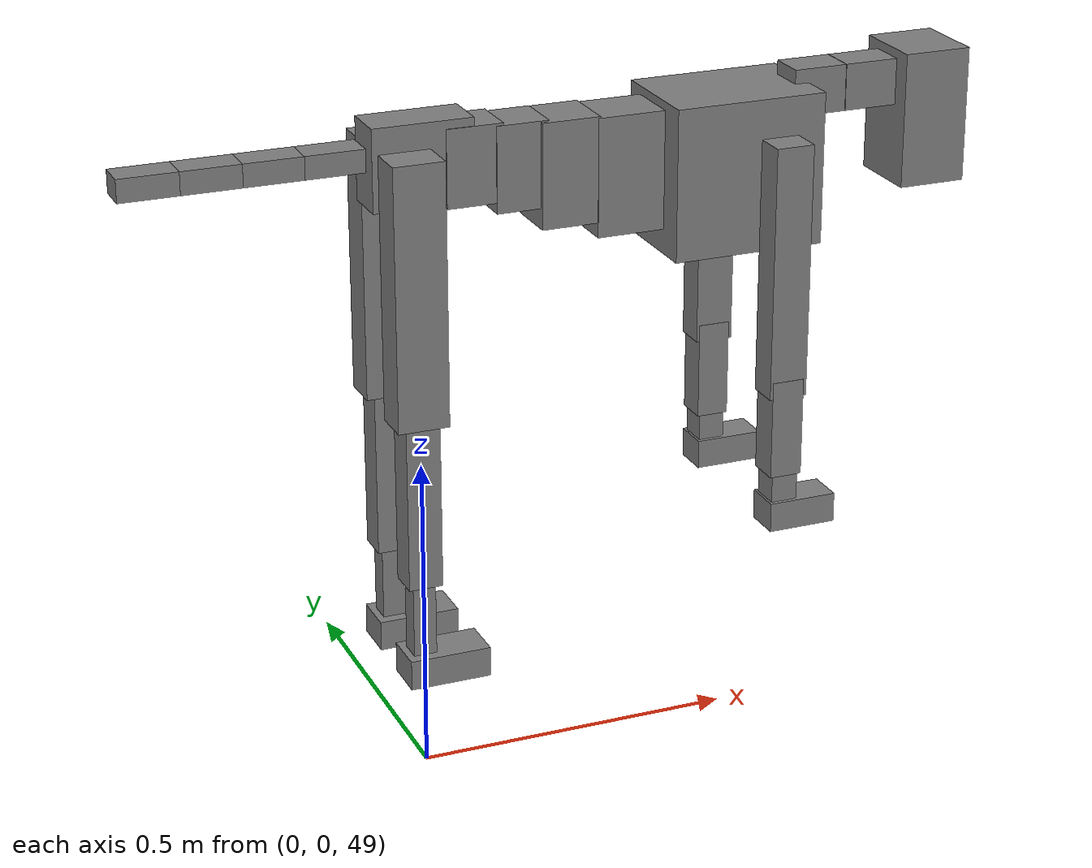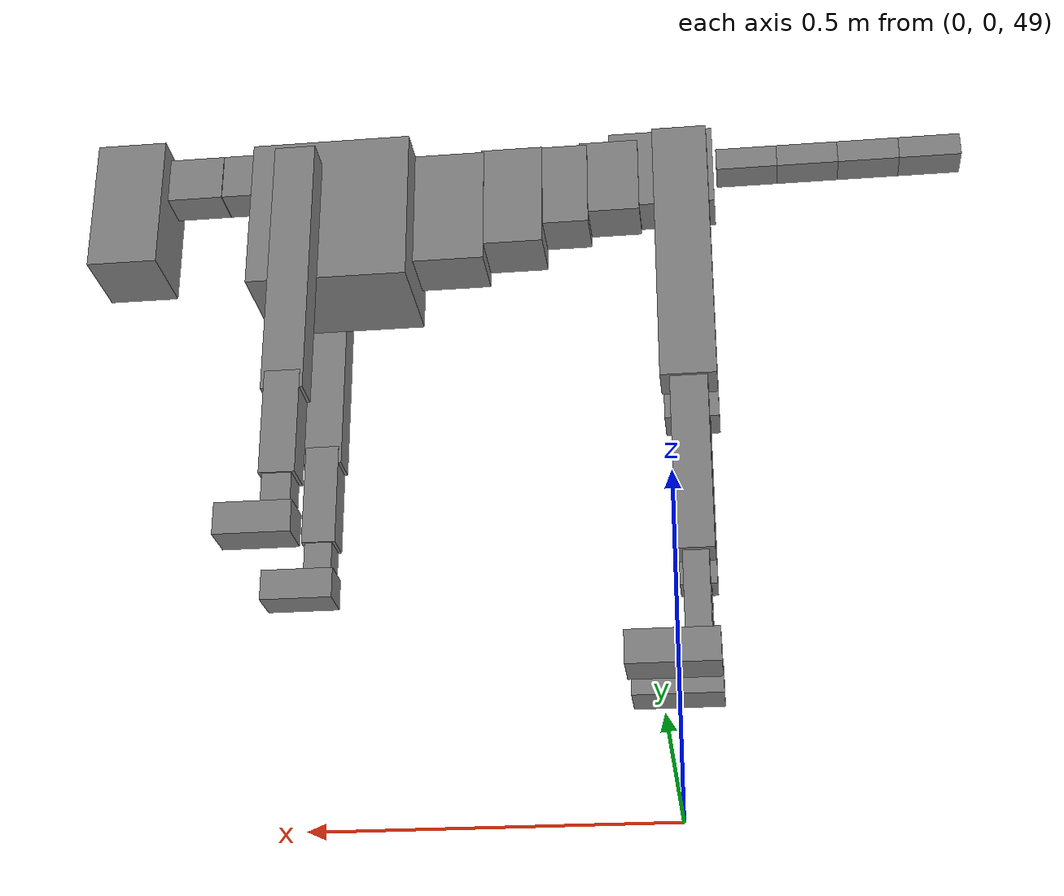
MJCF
<mujoco model="dog">

    <default>
        <joint armature="0.02" stiffness="1" damping="0.2" limited="true"/>
        <geom condim="3" friction="1 0.05 0.05" margin="0.01"/>
        <motor ctrllimited="true" ctrlrange="-1.0 1.0" forcelimited="true" gear="50"/>
    </default>

    <compiler inertiafromgeom="true" angle="radian"/>

    <option timestep="0.016" iterations="50" tolerance="1e-10" solver="Newton" jacobian="dense" cone="pyramidal"/>

    <size nconmax="20000" njmax="60000" nstack="5000000"/>
    <visual>
        <map force="0.1" zfar="30"/>
        <rgba haze="0.15 0.25 0.35 1"/>
        <quality shadowsize="2048"/>
        <global offwidth="800" offheight="800"/>
    </visual>

    <asset>
        <texture type="skybox" builtin="gradient" rgb1="0.3 0.5 0.7" rgb2="0 0 0" width="512" height="512"/>
        <texture name="texplane" type="2d" builtin="checker" rgb1=".2 .3 .4" rgb2=".1 0.15 0.2" width="512" height="512"
                 mark="cross" markrgb=".8 .8 .8"/>
        <texture name="texgeom" type="cube" builtin="flat" mark="cross" width="127" height="1278" rgb1="0.8 0.6 0.4"
                 rgb2="0.8 0.6 0.4" markrgb="1 1 1" random="0.01"/>

        <material name="matplane" reflectance="0.3" texture="texplane" texrepeat="1 1" texuniform="true"/>
        <material name="matgeom" texture="texgeom" texuniform="true" rgba="0.8 0.6 .4 1"/>
    </asset>

    <worldbody>
        <geom name="floor" pos="0 0 0" size="0 0 .25" type="plane" material="matplane" condim="3"/>

        <light directional="false" diffuse=".2 .2 .2" specular="0 0 0" pos="0 0 5" dir="0 0 -1" castshadow="false"/>
        <light mode="targetbodycom" target="torso" directional="false" diffuse=".8 .8 .8" specular="0.3 0.3 0.3"
               pos="0 0 4.0" dir="0 0 -1"/>

        <body name="root" pos="0 0 50">
            <freejoint name="root_1"/>
            <geom type="box" pos="0 0 -0.02" size="0.0774  0.0358  0.063" density="2030"/>

            <body name="spine1" pos="0.054 0 0">
                <joint name="spine1_y" axis="0 1 0" range="0 0.7" limited="true"/>
                <geom type="box" pos="0.02375 0 -0.03" size="0.04375  0.0375  0.05985" density="2030"/>

                <body name="spine2" pos="0.0612 0 0">
                    <joint name="spine2_y" axis="0 1 0" range="-0.15 0.15" limited="true"/>
                    <geom type="box" pos="0.03555  0  -0.04" size="0.04055  0.039  0.06615" density="2030"/>

                    <body name="spine3" pos="0.0730 0 0">
                        <joint name="spine3_y" axis="0 1 0" range="-0.15 0.15" limited="true"/>
                        <geom type="box" pos="0.03555  0  -0.057" size="0.04555  0.0445  0.081" density="2030"/>

                        <body name="spine4" pos="0.0780 0 0">
                            <joint name="spine4_y" axis="0 1 0" range="-0.15 0.15" limited="true"/>
                            <geom type="box" pos="0.05265  0  -0.07" size="0.05265  0.045  0.09135" density="2030"/>

                            <body name="torso" pos="0.1082 0 0">
                                <joint name="torso_y" axis="0 1 0" range="-0.15 0.15" limited="true"/>
                                <geom type="box" pos="0.11925  0  -0.085" size="0.11925  0.085  0.11745"
                                      density="2030"/>

                                <body name="neck1" pos="0.2160  0   0.0180">
                                    <joint name="neck1_y" axis="0 1 0" range="-1.2  -1" limited="true"/>
                                    <geom type="box" pos="0.0423  0  0" size="0.0423  0.03  0.036" density="2325"/>

                                    <body name="neck2" pos="0.0853  0  0">
                                        <joint name="neck2_y" axis="0 1 0" range="0.1  0" limited="true"/>
                                        <geom type="box" pos="0.0423  0  0" size="0.0423  0.03  0.036" density="2325"/>

                                        <body name="head" pos="0.0853  0  0">
                                            <joint name="head_y" axis="0 1 0" range="-0.3  -0.2" limited="true"/>
                                            <geom type="box" pos="0.0531  0  -0.055" size="0.0531  0.06  0.1044"
                                                  density="4030"/>

                                        </body>
                                    </body>
                                </body>

                                <body name="front_shoulder" pos="0.156  0   -0.0480">
                                    <joint name="front_shoulder_y" axis="0 1 0" range="-1 1.5" limited="true"/>
                                    <geom type="box" pos="0 0.13 -0.1700" size="0.0297  0.0254  0.1967" density="1158"/>
                                    <geom type="box" pos="0 -0.13 -0.1700" size="0.0297  0.0254  0.1967"
                                          density="1158"/>

                                    <body name="front_elbow" pos="0  0  -0.3400">
                                        <joint name="front_elbow_y" axis="0 1 0" range="-2 0" limited="true"/>
                                        <geom type="box" pos="0 0.13 -0.0772" size="0.0252  0.0258  0.0772"
                                              density="1081"/>
                                        <geom type="box" pos="0 -0.13 -0.0772" size="0.0252  0.0258  0.0772"
                                              density="1081"/>

                                        <body name="front_wrist" pos="0  0  -0.1544">
                                            <joint name="front_wrist_y" axis="0 1 0" range="-0.2 0" limited="true"/>
                                            <geom type="box" pos="0 0.13 -0.0287" size="0.0207  0.0230  0.0419"
                                                  density="1664"/>
                                            <geom type="box" pos="0 -0.13 -0.0287" size="0.0207  0.0230  0.0419"
                                                  density="1664"/>

                                            <body name="front_finger_end" pos="0  0  -0.0574">
                                                <joint name="front_finger_y" axis="0 1 0" range="-0.4 1"
                                                       limited="true"/>
                                                <geom type="box" pos="0.0293  0.13  -0.0080"
                                                      size="0.0537  0.0293  0.0230" density="1515"/>
                                                <geom type="box" pos="0.0293  -0.13  -0.0080"
                                                      size="0.0537  0.0293  0.0230" density="1515"/>

                                            </body>

                                        </body>
                                    </body>
                                </body>

                            </body>
                        </body>
                    </body>
                </body>
            </body>

            <body name="back_hip" pos="-0.03 0 -0.018">
                <joint name="back_hip_y" axis="0 1 0" range="-1.5 0.3" limited="true"/>
                <geom type="box" pos="0 0.07 -0.1791" size="0.0395  0.0310  0.2019" density="1154"/>
                <geom type="box" pos="0 -0.07 -0.1791" size="0.0395  0.0310  0.2019" density="1154"/>

                <body name="back_knee" pos="0  0  -0.3582">
                    <joint name="back_knee_y" axis="0 1 0" range="0 2.8" limited="true"/>
                    <geom type="box" pos="0 0.07 -0.1316" size="0.0263  0.0260  0.1472" density="1227"/>
                    <geom type="box" pos="0 -0.07 -0.1316" size="0.0263  0.0260  0.1472" density="1227"/>

                    <body name="back_ankle" pos="0  0  -0.2633">
                        <joint name="back_ankle_y" axis="0 1 0" range="-2.2 0" limited="true"/>
                        <geom type="box" pos="0 0.07 -0.0720" size="0.0178  0.0178  0.0832" density="1284"/>
                        <geom type="box" pos="0 -0.07 -0.0720" size="0.0178  0.0178  0.0832" density="1284"/>

                        <body name="back_toe_end" pos="0  0  -0.1440">
                            <joint name="back_toe_y" axis="0 1 0" range="-0.4 1" limited="true"/>
                            <geom type="box" pos="0.0345  0.07  -0.0084" size="0.0632  0.0345  0.0234" density="1515"/>
                            <geom type="box" pos="0.0345  -0.07  -0.0084" size="0.0632  0.0345  0.0234" density="1515"/>

                        </body>
                    </body>
                </body>
            </body>

            <body name="tail1" pos="-0.074 0 -0.006">
                <joint name="tail1_y" axis="0 1 0" range="-0.2 0.2" limited="true"/>
                <geom type="box" pos="-0.0536  0  0" size="0.045  0.025  0.0175" density="1587"/>

                <body name="tail2" pos="-0.09 0 0">
                    <joint name="tail2_y" axis="0 1 0" range="-0.2 0.2" limited="true"/>
                    <geom type="box" pos="-0.0536  0  0" size="0.045  0.025  0.0175" density="1587"/>

                    <body name="tail3" pos="-0.09 0 0">
                        <joint name="tail3_y" axis="0 1 0" range="-0.2 0.2" limited="true"/>
                        <geom type="box" pos="-0.0536  0  0" size="0.045  0.025  0.0175" density="1587"/>

                        <body name="tail4" pos="-0.09 0 0">
                            <joint name="tail4_y" axis="0 1 0" range="-0.2 0.2" limited="true"/>
                            <geom type="box" pos="-0.0536  0  0" size="0.045  0.025  0.0175" density="1587"/>

                        </body>
                    </body>
                </body>
            </body>
        </body>
    </worldbody>

    <actuator>
        <motor joint="spine1_y" forcerange="-150 150     "/>
        <motor joint="spine2_y" forcerange="-150 150     "/>
        <motor joint="spine3_y" forcerange="-150 150     "/>
        <motor joint="spine4_y" forcerange="-150 150     "/>
        <motor joint="torso_y" forcerange="-150 150     "/>
        <motor joint="neck1_y" forcerange="-100 100       "/>
        <motor joint="neck2_y" forcerange="-100 100       "/>
        <motor joint="head_y" forcerange="-150 150       "/>
        <motor joint="front_shoulder_y" forcerange="-132.93 136.56"/>
        <motor joint="front_elbow_y" forcerange="-144.47 143.24"/>
        <motor joint="front_wrist_y" forcerange="-114.78 69.36"/>
        <motor joint="front_finger_y" forcerange="-76.19 40.17"/>
        <motor joint="back_hip_y" forcerange="-291.09 321.96"/>
        <motor joint="back_knee_y" forcerange="-235.41 342.12"/>
        <motor joint="back_angle_y" forcerange="-74.55 110.47"/>
        <motor joint="back_toe_y" forcerange="-137.76 57.92"/>
        <motor joint="tail1_y" forcerange="-50 50     "/>
        <motor joint="tail2_y" forcerange="-50 50     "/>
        <motor joint="tail3_y" forcerange="-50 50     "/>
        <motor joint="tail4_y" forcerange="-50 50     "/>
    </actuator>
</mujoco>
